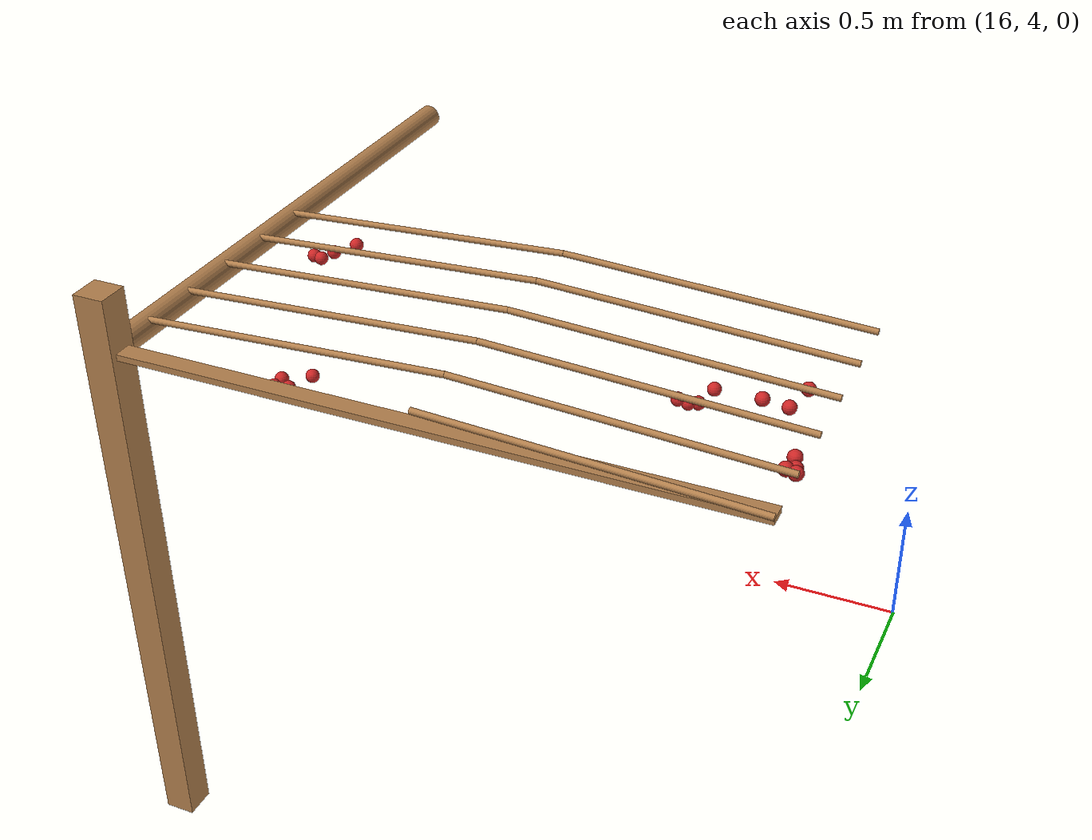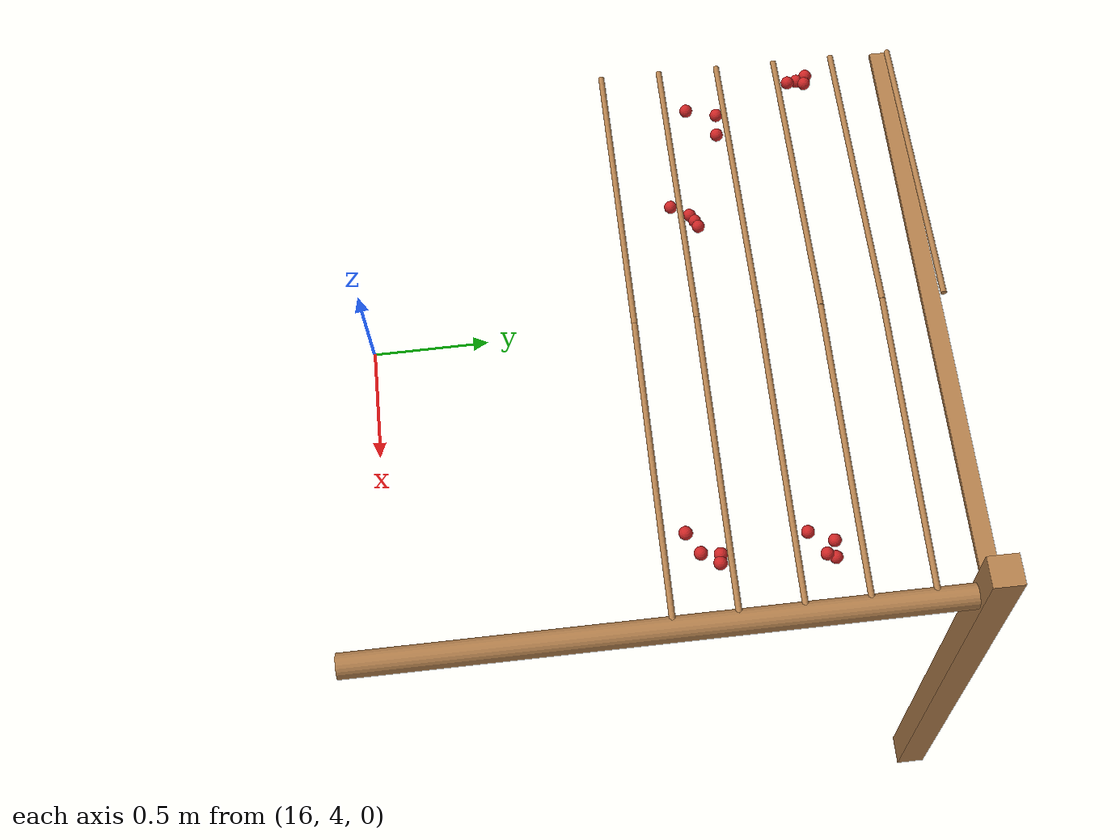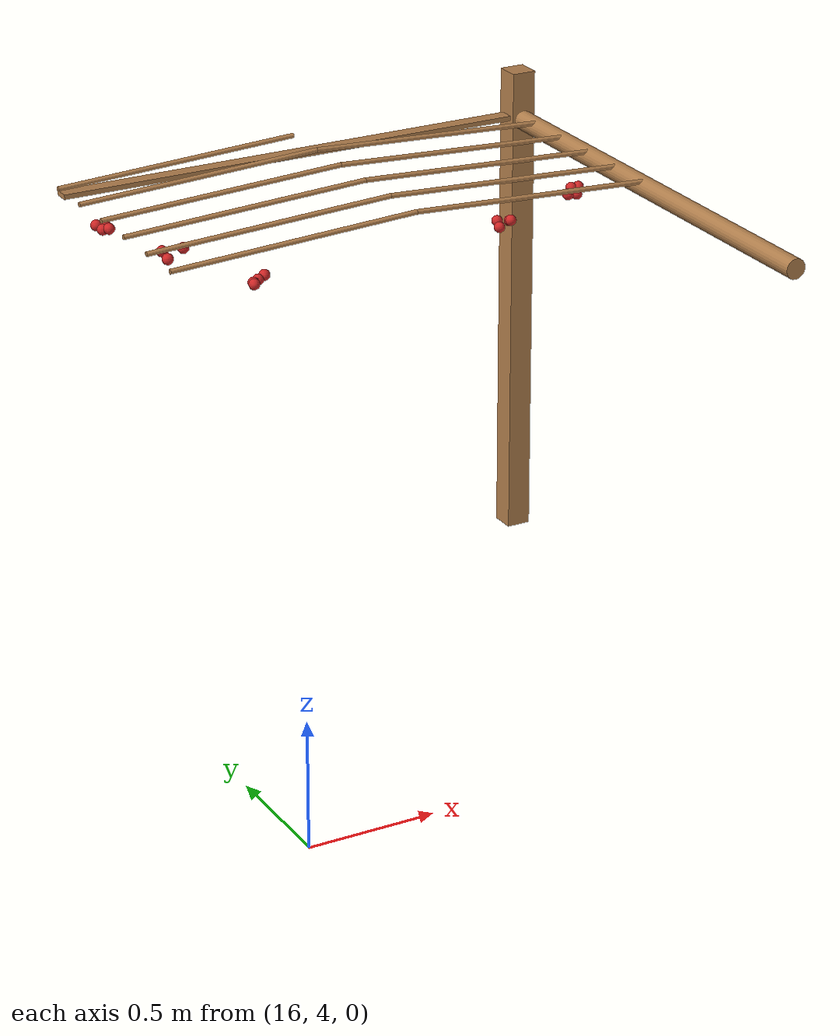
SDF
<sdf version="1.4">
 <model name="pergola">
  <include><name>post_102</name><pose>18.0 6.0 0 0 0 0</pose><uri>model://post</uri></include>
  <link name="beam_91">
   <pose>17.0 6.0 1.81 0 0 0</pose>
   <collision name="collision"><geometry><box><size>2.0 0.06 0.02</size></box></geometry></collision>
   <visual name="visual">
    <geometry><box><size>2.0 0.06 0.02</size></box></geometry>
    <material><script><name>Gazebo/Wood</name></script></material>
   </visual>
   <inertial>
    <mass>5</mass>
    <inertia>
     <ixx>0.0016666666666666668</ixx>
     <ixy>0.0</ixy>
     <ixz>0.0</ixz>
     <iyy>1.6681666666666664</iyy>
     <iyz>0.0</iyz>
     <izz>1.6668333333333332</izz>
    </inertia>
   </inertial>
  </link>
  <link name="baseBranch_92">
   <pose>18.0 5.0 1.8 1.5707963267948966 0 0</pose>
   <collision name="collision">
    <geometry><cylinder><radius>0.04</radius><length>1.94</length></cylinder></geometry>
   </collision>
   <visual name="visual">
    <geometry><cylinder><radius>0.04</radius><length>1.94</length></cylinder></geometry>
    <material><script><name>Gazebo/WoodFloor</name></script></material>
   </visual>
   <inertial>
    <mass>10</mass>
    <inertia>
     <ixx>3.140333333333333</ixx>
     <ixy>0.0</ixy>
     <ixz>0.0</ixz>
     <iyy>3.140333333333333</iyy>
     <iyz>0.0</iyz>
     <izz>0.008</izz>
    </inertia>
   </inertial>
  </link>
  <link name="vine_1650">
   <pose>16.5 5.03 1.85 0 1.5208379310729538 0</pose>
   <collision name="collision">
    <geometry><cylinder><radius>0.01</radius><length>1.0012492197250393</length></cylinder></geometry>
   </collision>
   <visual name="visual">
    <geometry><cylinder><radius>0.01</radius><length>1.0012492197250393</length></cylinder></geometry>
    <material><script><name>Gazebo/WoodFloor</name></script></material>
   </visual>
   <inertial>
    <mass>5</mass>
    <inertia>
     <ixx>0.41783333333333345</ixx>
     <ixy>0.0</ixy>
     <ixz>0.0</ixz>
     <iyy>0.41783333333333345</iyy>
     <iyz>0.0</iyz>
     <izz>0.00025</izz>
    </inertia>
   </inertial>
  </link>
  <link name="vine_1651">
   <pose>17.5 5.03 1.85 0 -1.5208379310729538 0</pose>
   <collision name="collision">
    <geometry><cylinder><radius>0.01</radius><length>1.0012492197250393</length></cylinder></geometry>
   </collision>
   <visual name="visual">
    <geometry><cylinder><radius>0.01</radius><length>1.0012492197250393</length></cylinder></geometry>
    <material><script><name>Gazebo/WoodFloor</name></script></material>
   </visual>
   <inertial>
    <mass>5</mass>
    <inertia>
     <ixx>0.41783333333333345</ixx>
     <ixy>0.0</ixy>
     <ixz>0.0</ixz>
     <iyy>0.41783333333333345</iyy>
     <iyz>0.0</iyz>
     <izz>0.00025</izz>
    </inertia>
   </inertial>
  </link>
  <link name="vine_1652">
   <pose>16.5 5.23 1.85 0 1.5208379310729538 0</pose>
   <collision name="collision">
    <geometry><cylinder><radius>0.01</radius><length>1.0012492197250393</length></cylinder></geometry>
   </collision>
   <visual name="visual">
    <geometry><cylinder><radius>0.01</radius><length>1.0012492197250393</length></cylinder></geometry>
    <material><script><name>Gazebo/WoodFloor</name></script></material>
   </visual>
   <inertial>
    <mass>5</mass>
    <inertia>
     <ixx>0.41783333333333345</ixx>
     <ixy>0.0</ixy>
     <ixz>0.0</ixz>
     <iyy>0.41783333333333345</iyy>
     <iyz>0.0</iyz>
     <izz>0.00025</izz>
    </inertia>
   </inertial>
  </link>
  <link name="vine_1653">
   <pose>17.5 5.23 1.85 0 -1.5208379310729538 0</pose>
   <collision name="collision">
    <geometry><cylinder><radius>0.01</radius><length>1.0012492197250393</length></cylinder></geometry>
   </collision>
   <visual name="visual">
    <geometry><cylinder><radius>0.01</radius><length>1.0012492197250393</length></cylinder></geometry>
    <material><script><name>Gazebo/WoodFloor</name></script></material>
   </visual>
   <inertial>
    <mass>5</mass>
    <inertia>
     <ixx>0.41783333333333345</ixx>
     <ixy>0.0</ixy>
     <ixz>0.0</ixz>
     <iyy>0.41783333333333345</iyy>
     <iyz>0.0</iyz>
     <izz>0.00025</izz>
    </inertia>
   </inertial>
  </link>
  <link name="vine_1654">
   <pose>16.5 5.430000000000001 1.85 0 1.5208379310729538 0</pose>
   <collision name="collision">
    <geometry><cylinder><radius>0.01</radius><length>1.0012492197250393</length></cylinder></geometry>
   </collision>
   <visual name="visual">
    <geometry><cylinder><radius>0.01</radius><length>1.0012492197250393</length></cylinder></geometry>
    <material><script><name>Gazebo/WoodFloor</name></script></material>
   </visual>
   <inertial>
    <mass>5</mass>
    <inertia>
     <ixx>0.41783333333333345</ixx>
     <ixy>0.0</ixy>
     <ixz>0.0</ixz>
     <iyy>0.41783333333333345</iyy>
     <iyz>0.0</iyz>
     <izz>0.00025</izz>
    </inertia>
   </inertial>
  </link>
  <link name="vine_1655">
   <pose>17.5 5.430000000000001 1.85 0 -1.5208379310729538 0</pose>
   <collision name="collision">
    <geometry><cylinder><radius>0.01</radius><length>1.0012492197250393</length></cylinder></geometry>
   </collision>
   <visual name="visual">
    <geometry><cylinder><radius>0.01</radius><length>1.0012492197250393</length></cylinder></geometry>
    <material><script><name>Gazebo/WoodFloor</name></script></material>
   </visual>
   <inertial>
    <mass>5</mass>
    <inertia>
     <ixx>0.41783333333333345</ixx>
     <ixy>0.0</ixy>
     <ixz>0.0</ixz>
     <iyy>0.41783333333333345</iyy>
     <iyz>0.0</iyz>
     <izz>0.00025</izz>
    </inertia>
   </inertial>
  </link>
  <link name="vine_1656">
   <pose>16.5 5.630000000000001 1.85 0 1.5208379310729538 0</pose>
   <collision name="collision">
    <geometry><cylinder><radius>0.01</radius><length>1.0012492197250393</length></cylinder></geometry>
   </collision>
   <visual name="visual">
    <geometry><cylinder><radius>0.01</radius><length>1.0012492197250393</length></cylinder></geometry>
    <material><script><name>Gazebo/WoodFloor</name></script></material>
   </visual>
   <inertial>
    <mass>5</mass>
    <inertia>
     <ixx>0.41783333333333345</ixx>
     <ixy>0.0</ixy>
     <ixz>0.0</ixz>
     <iyy>0.41783333333333345</iyy>
     <iyz>0.0</iyz>
     <izz>0.00025</izz>
    </inertia>
   </inertial>
  </link>
  <link name="vine_1657">
   <pose>17.5 5.630000000000001 1.85 0 -1.5208379310729538 0</pose>
   <collision name="collision">
    <geometry><cylinder><radius>0.01</radius><length>1.0012492197250393</length></cylinder></geometry>
   </collision>
   <visual name="visual">
    <geometry><cylinder><radius>0.01</radius><length>1.0012492197250393</length></cylinder></geometry>
    <material><script><name>Gazebo/WoodFloor</name></script></material>
   </visual>
   <inertial>
    <mass>5</mass>
    <inertia>
     <ixx>0.41783333333333345</ixx>
     <ixy>0.0</ixy>
     <ixz>0.0</ixz>
     <iyy>0.41783333333333345</iyy>
     <iyz>0.0</iyz>
     <izz>0.00025</izz>
    </inertia>
   </inertial>
  </link>
  <link name="vine_1658">
   <pose>16.5 5.830000000000001 1.85 0 1.5208379310729538 0</pose>
   <collision name="collision">
    <geometry><cylinder><radius>0.01</radius><length>1.0012492197250393</length></cylinder></geometry>
   </collision>
   <visual name="visual">
    <geometry><cylinder><radius>0.01</radius><length>1.0012492197250393</length></cylinder></geometry>
    <material><script><name>Gazebo/WoodFloor</name></script></material>
   </visual>
   <inertial>
    <mass>5</mass>
    <inertia>
     <ixx>0.41783333333333345</ixx>
     <ixy>0.0</ixy>
     <ixz>0.0</ixz>
     <iyy>0.41783333333333345</iyy>
     <iyz>0.0</iyz>
     <izz>0.00025</izz>
    </inertia>
   </inertial>
  </link>
  <link name="vine_1659">
   <pose>17.5 5.830000000000001 1.85 0 -1.5208379310729538 0</pose>
   <collision name="collision">
    <geometry><cylinder><radius>0.01</radius><length>1.0012492197250393</length></cylinder></geometry>
   </collision>
   <visual name="visual">
    <geometry><cylinder><radius>0.01</radius><length>1.0012492197250393</length></cylinder></geometry>
    <material><script><name>Gazebo/WoodFloor</name></script></material>
   </visual>
   <inertial>
    <mass>5</mass>
    <inertia>
     <ixx>0.41783333333333345</ixx>
     <ixy>0.0</ixy>
     <ixz>0.0</ixz>
     <iyy>0.41783333333333345</iyy>
     <iyz>0.0</iyz>
     <izz>0.00025</izz>
    </inertia>
   </inertial>
  </link>
  <link name="vine_1660">
   <pose>16.5 6.03 1.85 0 1.5208379310729538 0</pose>
   <collision name="collision">
    <geometry><cylinder><radius>0.01</radius><length>1.0012492197250393</length></cylinder></geometry>
   </collision>
   <visual name="visual">
    <geometry><cylinder><radius>0.01</radius><length>1.0012492197250393</length></cylinder></geometry>
    <material><script><name>Gazebo/WoodFloor</name></script></material>
   </visual>
   <inertial>
    <mass>5</mass>
    <inertia>
     <ixx>0.41783333333333345</ixx>
     <ixy>0.0</ixy>
     <ixz>0.0</ixz>
     <iyy>0.41783333333333345</iyy>
     <iyz>0.0</iyz>
     <izz>0.00025</izz>
    </inertia>
   </inertial>
  </link>
  <link name="fruit_106">
   <pose>16.120993195612577 5.310875737240174 1.7573610749882658 0 0 0</pose>
   <collision name="fruit_collision_106"><geometry><sphere><radius>0.022</radius></sphere></geometry></collision>
   <visual name="visual">
    <geometry><sphere><radius>0.022</radius></sphere></geometry>
    <material><script><name>Gazebo/Red</name></script></material>
   </visual>
   <inertial>
    <mass>0.05</mass>
    <inertia>
     <ixx>9.679999999999999e-06</ixx>
     <ixy>0.0</ixy>
     <ixz>0.0</ixz>
     <iyy>9.679999999999999e-06</iyy>
     <iyz>0.0</iyz>
     <izz>9.679999999999999e-06</izz>
    </inertia>
   </inertial>
   <sensor name="fruit_contact_106" type="contact">
    <contact><collision>fruit_collision_106</collision></contact>
   </sensor>
  </link>
  <link name="fruit_207">
   <pose>16.425854485181134 5.222174090980937 1.6325280307687045 0 0 0</pose>
   <collision name="fruit_collision_207"><geometry><sphere><radius>0.022</radius></sphere></geometry></collision>
   <visual name="visual">
    <geometry><sphere><radius>0.022</radius></sphere></geometry>
    <material><script><name>Gazebo/Red</name></script></material>
   </visual>
   <inertial>
    <mass>0.05</mass>
    <inertia>
     <ixx>9.679999999999999e-06</ixx>
     <ixy>0.0</ixy>
     <ixz>0.0</ixz>
     <iyy>9.679999999999999e-06</iyy>
     <iyz>0.0</iyz>
     <izz>9.679999999999999e-06</izz>
    </inertia>
   </inertial>
   <sensor name="fruit_contact_207" type="contact">
    <contact><collision>fruit_collision_207</collision></contact>
   </sensor>
  </link>
  <link name="fruit_213">
   <pose>17.639250852040032 5.517099092440999 1.544636654455415 0 0 0</pose>
   <collision name="fruit_collision_213"><geometry><sphere><radius>0.022</radius></sphere></geometry></collision>
   <visual name="visual">
    <geometry><sphere><radius>0.022</radius></sphere></geometry>
    <material><script><name>Gazebo/Red</name></script></material>
   </visual>
   <inertial>
    <mass>0.05</mass>
    <inertia>
     <ixx>9.679999999999999e-06</ixx>
     <ixy>0.0</ixy>
     <ixz>0.0</ixz>
     <iyy>9.679999999999999e-06</iyy>
     <iyz>0.0</iyz>
     <izz>9.679999999999999e-06</izz>
    </inertia>
   </inertial>
   <sensor name="fruit_contact_213" type="contact">
    <contact><collision>fruit_collision_213</collision></contact>
   </sensor>
  </link>
  <link name="fruit_250">
   <pose>17.698689835287812 5.106483014302051 1.7992863530832706 0 0 0</pose>
   <collision name="fruit_collision_250"><geometry><sphere><radius>0.022</radius></sphere></geometry></collision>
   <visual name="visual">
    <geometry><sphere><radius>0.022</radius></sphere></geometry>
    <material><script><name>Gazebo/Red</name></script></material>
   </visual>
   <inertial>
    <mass>0.05</mass>
    <inertia>
     <ixx>9.679999999999999e-06</ixx>
     <ixy>0.0</ixy>
     <ixz>0.0</ixz>
     <iyy>9.679999999999999e-06</iyy>
     <iyz>0.0</iyz>
     <izz>9.679999999999999e-06</izz>
    </inertia>
   </inertial>
   <sensor name="fruit_contact_250" type="contact">
    <contact><collision>fruit_collision_250</collision></contact>
   </sensor>
  </link>
  <link name="fruit_369">
   <pose>17.761158178872638 5.145784304489815 1.778314110702332 0 0 0</pose>
   <collision name="fruit_collision_369"><geometry><sphere><radius>0.022</radius></sphere></geometry></collision>
   <visual name="visual">
    <geometry><sphere><radius>0.022</radius></sphere></geometry>
    <material><script><name>Gazebo/Red</name></script></material>
   </visual>
   <inertial>
    <mass>0.05</mass>
    <inertia>
     <ixx>9.679999999999999e-06</ixx>
     <ixy>0.0</ixy>
     <ixz>0.0</ixz>
     <iyy>9.679999999999999e-06</iyy>
     <iyz>0.0</iyz>
     <izz>9.679999999999999e-06</izz>
    </inertia>
   </inertial>
   <sensor name="fruit_contact_369" type="contact">
    <contact><collision>fruit_collision_369</collision></contact>
   </sensor>
  </link>
  <link name="fruit_370">
   <pose>16.059036366216493 5.733585066182744 1.7662373768661377 0 0 0</pose>
   <collision name="fruit_collision_370"><geometry><sphere><radius>0.022</radius></sphere></geometry></collision>
   <visual name="visual">
    <geometry><sphere><radius>0.022</radius></sphere></geometry>
    <material><script><name>Gazebo/Red</name></script></material>
   </visual>
   <inertial>
    <mass>0.05</mass>
    <inertia>
     <ixx>9.679999999999999e-06</ixx>
     <ixy>0.0</ixy>
     <ixz>0.0</ixz>
     <iyy>9.679999999999999e-06</iyy>
     <iyz>0.0</iyz>
     <izz>9.679999999999999e-06</izz>
    </inertia>
   </inertial>
   <sensor name="fruit_contact_370" type="contact">
    <contact><collision>fruit_collision_370</collision></contact>
   </sensor>
  </link>
  <link name="fruit_391">
   <pose>17.80117160766433 5.200937496439651 1.7833743790343555 0 0 0</pose>
   <collision name="fruit_collision_391"><geometry><sphere><radius>0.022</radius></sphere></geometry></collision>
   <visual name="visual">
    <geometry><sphere><radius>0.022</radius></sphere></geometry>
    <material><script><name>Gazebo/Red</name></script></material>
   </visual>
   <inertial>
    <mass>0.05</mass>
    <inertia>
     <ixx>9.679999999999999e-06</ixx>
     <ixy>0.0</ixy>
     <ixz>0.0</ixz>
     <iyy>9.679999999999999e-06</iyy>
     <iyz>0.0</iyz>
     <izz>9.679999999999999e-06</izz>
    </inertia>
   </inertial>
   <sensor name="fruit_contact_391" type="contact">
    <contact><collision>fruit_collision_391</collision></contact>
   </sensor>
  </link>
  <link name="fruit_491">
   <pose>17.675767209790084 5.599222128562401 1.5389523081618979 0 0 0</pose>
   <collision name="fruit_collision_491"><geometry><sphere><radius>0.022</radius></sphere></geometry></collision>
   <visual name="visual">
    <geometry><sphere><radius>0.022</radius></sphere></geometry>
    <material><script><name>Gazebo/Red</name></script></material>
   </visual>
   <inertial>
    <mass>0.05</mass>
    <inertia>
     <ixx>9.679999999999999e-06</ixx>
     <ixy>0.0</ixy>
     <ixz>0.0</ixz>
     <iyy>9.679999999999999e-06</iyy>
     <iyz>0.0</iyz>
     <izz>9.679999999999999e-06</izz>
    </inertia>
   </inertial>
   <sensor name="fruit_contact_491" type="contact">
    <contact><collision>fruit_collision_491</collision></contact>
   </sensor>
  </link>
  <link name="fruit_588">
   <pose>16.051866221517045 5.676309770360244 1.7694958111860695 0 0 0</pose>
   <collision name="fruit_collision_588"><geometry><sphere><radius>0.022</radius></sphere></geometry></collision>
   <visual name="visual">
    <geometry><sphere><radius>0.022</radius></sphere></geometry>
    <material><script><name>Gazebo/Red</name></script></material>
   </visual>
   <inertial>
    <mass>0.05</mass>
    <inertia>
     <ixx>9.679999999999999e-06</ixx>
     <ixy>0.0</ixy>
     <ixz>0.0</ixz>
     <iyy>9.679999999999999e-06</iyy>
     <iyz>0.0</iyz>
     <izz>9.679999999999999e-06</izz>
    </inertia>
   </inertial>
   <sensor name="fruit_contact_588" type="contact">
    <contact><collision>fruit_collision_588</collision></contact>
   </sensor>
  </link>
  <link name="fruit_605">
   <pose>16.509121278688554 5.307636345343374 1.6251626802377845 0 0 0</pose>
   <collision name="fruit_collision_605"><geometry><sphere><radius>0.022</radius></sphere></geometry></collision>
   <visual name="visual">
    <geometry><sphere><radius>0.022</radius></sphere></geometry>
    <material><script><name>Gazebo/Red</name></script></material>
   </visual>
   <inertial>
    <mass>0.05</mass>
    <inertia>
     <ixx>9.679999999999999e-06</ixx>
     <ixy>0.0</ixy>
     <ixz>0.0</ixz>
     <iyy>9.679999999999999e-06</iyy>
     <iyz>0.0</iyz>
     <izz>9.679999999999999e-06</izz>
    </inertia>
   </inertial>
   <sensor name="fruit_contact_605" type="contact">
    <contact><collision>fruit_collision_605</collision></contact>
   </sensor>
  </link>
  <link name="fruit_639">
   <pose>16.227174429989606 5.404101977039131 1.7510256759136882 0 0 0</pose>
   <collision name="fruit_collision_639"><geometry><sphere><radius>0.022</radius></sphere></geometry></collision>
   <visual name="visual">
    <geometry><sphere><radius>0.022</radius></sphere></geometry>
    <material><script><name>Gazebo/Red</name></script></material>
   </visual>
   <inertial>
    <mass>0.05</mass>
    <inertia>
     <ixx>9.679999999999999e-06</ixx>
     <ixy>0.0</ixy>
     <ixz>0.0</ixz>
     <iyy>9.679999999999999e-06</iyy>
     <iyz>0.0</iyz>
     <izz>9.679999999999999e-06</izz>
    </inertia>
   </inertial>
   <sensor name="fruit_contact_639" type="contact">
    <contact><collision>fruit_collision_639</collision></contact>
   </sensor>
  </link>
  <link name="fruit_642">
   <pose>16.452947475160517 5.284735251760463 1.6127698454838575 0 0 0</pose>
   <collision name="fruit_collision_642"><geometry><sphere><radius>0.022</radius></sphere></geometry></collision>
   <visual name="visual">
    <geometry><sphere><radius>0.022</radius></sphere></geometry>
    <material><script><name>Gazebo/Red</name></script></material>
   </visual>
   <inertial>
    <mass>0.05</mass>
    <inertia>
     <ixx>9.679999999999999e-06</ixx>
     <ixy>0.0</ixy>
     <ixz>0.0</ixz>
     <iyy>9.679999999999999e-06</iyy>
     <iyz>0.0</iyz>
     <izz>9.679999999999999e-06</izz>
    </inertia>
   </inertial>
   <sensor name="fruit_contact_642" type="contact">
    <contact><collision>fruit_collision_642</collision></contact>
   </sensor>
  </link>
  <link name="fruit_762">
   <pose>17.77289529946516 5.205573828534527 1.78192985062949 0 0 0</pose>
   <collision name="fruit_collision_762"><geometry><sphere><radius>0.022</radius></sphere></geometry></collision>
   <visual name="visual">
    <geometry><sphere><radius>0.022</radius></sphere></geometry>
    <material><script><name>Gazebo/Red</name></script></material>
   </visual>
   <inertial>
    <mass>0.05</mass>
    <inertia>
     <ixx>9.679999999999999e-06</ixx>
     <ixy>0.0</ixy>
     <ixz>0.0</ixz>
     <iyy>9.679999999999999e-06</iyy>
     <iyz>0.0</iyz>
     <izz>9.679999999999999e-06</izz>
    </inertia>
   </inertial>
   <sensor name="fruit_contact_762" type="contact">
    <contact><collision>fruit_collision_762</collision></contact>
   </sensor>
  </link>
  <link name="fruit_792">
   <pose>16.0396856932522 5.709505869102205 1.757700414270684 0 0 0</pose>
   <collision name="fruit_collision_792"><geometry><sphere><radius>0.022</radius></sphere></geometry></collision>
   <visual name="visual">
    <geometry><sphere><radius>0.022</radius></sphere></geometry>
    <material><script><name>Gazebo/Red</name></script></material>
   </visual>
   <inertial>
    <mass>0.05</mass>
    <inertia>
     <ixx>9.679999999999999e-06</ixx>
     <ixy>0.0</ixy>
     <ixz>0.0</ixz>
     <iyy>9.679999999999999e-06</iyy>
     <iyz>0.0</iyz>
     <izz>9.679999999999999e-06</izz>
    </inertia>
   </inertial>
   <sensor name="fruit_contact_792" type="contact">
    <contact><collision>fruit_collision_792</collision></contact>
   </sensor>
  </link>
  <link name="fruit_810">
   <pose>16.479152246910814 5.299813622010497 1.6147341234813744 0 0 0</pose>
   <collision name="fruit_collision_810"><geometry><sphere><radius>0.022</radius></sphere></geometry></collision>
   <visual name="visual">
    <geometry><sphere><radius>0.022</radius></sphere></geometry>
    <material><script><name>Gazebo/Red</name></script></material>
   </visual>
   <inertial>
    <mass>0.05</mass>
    <inertia>
     <ixx>9.679999999999999e-06</ixx>
     <ixy>0.0</ixy>
     <ixz>0.0</ixz>
     <iyy>9.679999999999999e-06</iyy>
     <iyz>0.0</iyz>
     <izz>9.679999999999999e-06</izz>
    </inertia>
   </inertial>
   <sensor name="fruit_contact_810" type="contact">
    <contact><collision>fruit_collision_810</collision></contact>
   </sensor>
  </link>
  <link name="fruit_819">
   <pose>16.02850965662049 5.742641486640424 1.7662048155521757 0 0 0</pose>
   <collision name="fruit_collision_819"><geometry><sphere><radius>0.022</radius></sphere></geometry></collision>
   <visual name="visual">
    <geometry><sphere><radius>0.022</radius></sphere></geometry>
    <material><script><name>Gazebo/Red</name></script></material>
   </visual>
   <inertial>
    <mass>0.05</mass>
    <inertia>
     <ixx>9.679999999999999e-06</ixx>
     <ixy>0.0</ixy>
     <ixz>0.0</ixz>
     <iyy>9.679999999999999e-06</iyy>
     <iyz>0.0</iyz>
     <izz>9.679999999999999e-06</izz>
    </inertia>
   </inertial>
   <sensor name="fruit_contact_819" type="contact">
    <contact><collision>fruit_collision_819</collision></contact>
   </sensor>
  </link>
  <link name="fruit_853">
   <pose>17.719738852016167 5.567505403168077 1.543343062183438 0 0 0</pose>
   <collision name="fruit_collision_853"><geometry><sphere><radius>0.022</radius></sphere></geometry></collision>
   <visual name="visual">
    <geometry><sphere><radius>0.022</radius></sphere></geometry>
    <material><script><name>Gazebo/Red</name></script></material>
   </visual>
   <inertial>
    <mass>0.05</mass>
    <inertia>
     <ixx>9.679999999999999e-06</ixx>
     <ixy>0.0</ixy>
     <ixz>0.0</ixz>
     <iyy>9.679999999999999e-06</iyy>
     <iyz>0.0</iyz>
     <izz>9.679999999999999e-06</izz>
    </inertia>
   </inertial>
   <sensor name="fruit_contact_853" type="contact">
    <contact><collision>fruit_collision_853</collision></contact>
   </sensor>
  </link>
  <link name="fruit_887">
   <pose>16.145524944551276 5.41383545492334 1.7495742087043682 0 0 0</pose>
   <collision name="fruit_collision_887"><geometry><sphere><radius>0.022</radius></sphere></geometry></collision>
   <visual name="visual">
    <geometry><sphere><radius>0.022</radius></sphere></geometry>
    <material><script><name>Gazebo/Red</name></script></material>
   </visual>
   <inertial>
    <mass>0.05</mass>
    <inertia>
     <ixx>9.679999999999999e-06</ixx>
     <ixy>0.0</ixy>
     <ixz>0.0</ixz>
     <iyy>9.679999999999999e-06</iyy>
     <iyz>0.0</iyz>
     <izz>9.679999999999999e-06</izz>
    </inertia>
   </inertial>
   <sensor name="fruit_contact_887" type="contact">
    <contact><collision>fruit_collision_887</collision></contact>
   </sensor>
  </link>
  <link name="fruit_996">
   <pose>17.730260493943476 5.596029483973095 1.531207947773599 0 0 0</pose>
   <collision name="fruit_collision_996"><geometry><sphere><radius>0.022</radius></sphere></geometry></collision>
   <visual name="visual">
    <geometry><sphere><radius>0.022</radius></sphere></geometry>
    <material><script><name>Gazebo/Red</name></script></material>
   </visual>
   <inertial>
    <mass>0.05</mass>
    <inertia>
     <ixx>9.679999999999999e-06</ixx>
     <ixy>0.0</ixy>
     <ixz>0.0</ixz>
     <iyy>9.679999999999999e-06</iyy>
     <iyz>0.0</iyz>
     <izz>9.679999999999999e-06</izz>
    </inertia>
   </inertial>
   <sensor name="fruit_contact_996" type="contact">
    <contact><collision>fruit_collision_996</collision></contact>
   </sensor>
  </link>
 </model>
</sdf>
